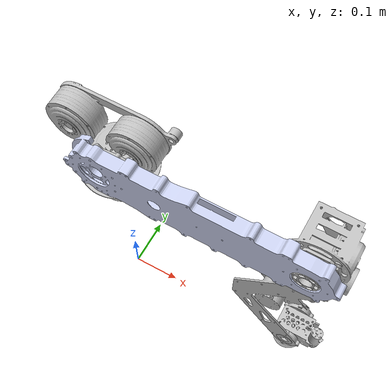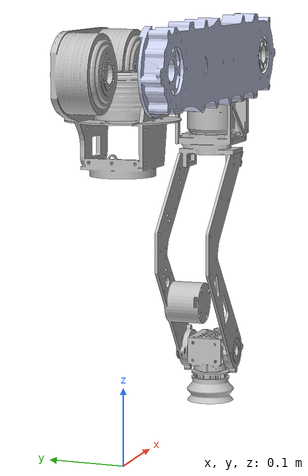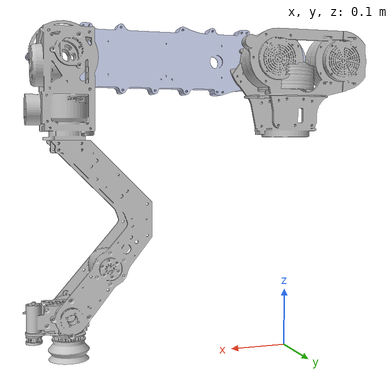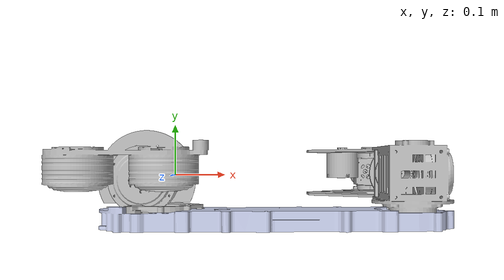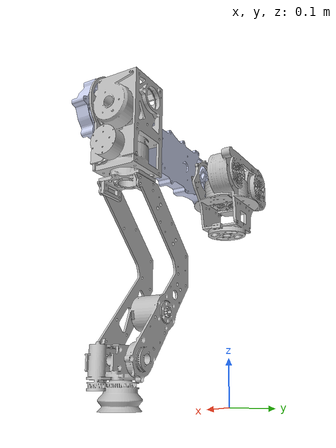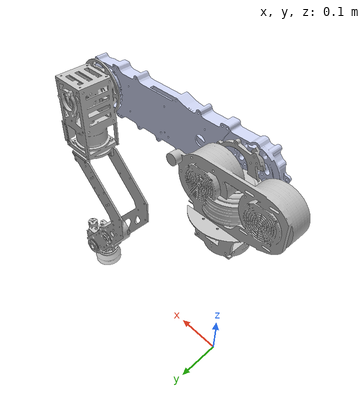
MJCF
<mujoco model="ARV_V1_MODEL">
  <compiler angle="radian" meshdir="/home/wuhuan/ros2_ws/src/ARV_V1_MODEL/meshes/"/>

  <option timestep="0.005"/>

  <size njmax="0" nconmax="0"/>

  <asset>
    <mesh name="base_link" content_type="model/stl" file="base_link.STL"/>
    <mesh name="link1_double8009" content_type="model/stl" file="link1_double8009.STL"/>
    <mesh name="link2_arm1" content_type="model/stl" file="link2_arm1.STL"/>
    <mesh name="link3_sight" content_type="model/stl" file="link3_sight.STL"/>
    <mesh name="link4_arm2" content_type="model/stl" file="link4_arm2.STL"/>
    <mesh name="link5_4310pitch" content_type="model/stl" file="link5_4310pitch.STL"/>
    <mesh name="link6_2006roll" content_type="model/stl" file="link6_2006roll.STL"/>
  </asset>

  <worldbody>
    <geom pos="0 0 0.5" quat="1 0 0 0" type="mesh" rgba="0.752941 0.752941 0.752941 1" mesh="base_link" contype="0" conaffinity="0"/>
    <body name="link1_double8009" pos="0 0 0.5">
      <inertial pos="-0.0155 0.0079001 -0.0262" quat="0.533551 0.464269 0.463309 0.533968" mass="1.22526" diaginertia="0.00217005 0.00132596 0.0012599"/>
      <joint name="joint_1" pos="0 0 0" axis="0 0 1" range="-3.2 3.2" actuatorfrcrange="-20 20" damping="0.1" frictionloss="0.1"/>
      <geom pos="0.03215 0 0" quat="0.707105 0.707108 0 0" type="mesh" rgba="0.752941 0.752941 0.752941 1" mesh="link1_double8009" contype="0" conaffinity="0"/>
      <body name="link2_arm1" quat="0.707105 0.707108 0 0">
        <inertial pos="-0.207835 -0.000992871 0.0570377" quat="-0.00195939 0.706956 -0.000894632 0.707254" mass="1.13036" diaginertia="0.0175304 0.016188 0.00142583"/>
        <joint name="joint_2" pos="0 0 0" axis="0 0 1" range="-3.2 3.2" actuatorfrcrange="-20 20" damping="0.1" frictionloss="0.1"/>
        <geom pos="0.381 0 0" quat="1 0 0 0" type="mesh" rgba="0.792157 0.819608 0.933333 1" mesh="link2_arm1" contype="0" conaffinity="0"/>
        <body name="link3_sight" pos="0.382 0 -0.0072">
          <inertial pos="0.010608 -0.0536252 0.0110705" quat="0.525051 0.488136 -0.470632 0.514345" mass="1.25599" diaginertia="0.00111928 0.00105266 0.000829075"/>
          <joint name="joint_3" pos="0 0 0" axis="0 0 -1" range="-3.2 3.2" actuatorfrcrange="-20 20" damping="0.1" frictionloss="0.1"/>
          <geom type="mesh" rgba="0.752941 0.752941 0.752941 1" mesh="link3_sight" contype="0" conaffinity="0"/>
          <body name="link4_arm2" pos="0 -0.418 0">
            <inertial pos="-0.0471748 0.116148 -0.00314899" quat="0.485468 0.514082 -0.485474 0.514155" mass="0.40616" diaginertia="0.00292372 0.00242026 0.000505354"/>
            <joint name="joint_4" pos="0 0 0" axis="0 -1 0" range="-3.2 3.2" actuatorfrcrange="-1.2 1.2" damping="0.1" frictionloss="0.1"/>
            <geom type="mesh" rgba="0.752941 0.752941 0.752941 1" mesh="link4_arm2" contype="0" conaffinity="0"/>
            <body name="link5_4310pitch" quat="0.707107 0.707107 0 0">
              <inertial pos="0.0149376 0.0044388 0.00729204" quat="-0.00108084 0.700731 0.00123916 0.713424" mass="0.145782" diaginertia="5.55925e-05 4.96765e-05 2.16144e-05"/>
              <joint name="joint_5" pos="0 0 0" axis="0 1 0" range="-3.2 3.2" actuatorfrcrange="-7 7" damping="0.1" frictionloss="0.1"/>
              <geom type="mesh" rgba="0.752941 0.752941 0.752941 1" mesh="link5_4310pitch" contype="0" conaffinity="0"/>
              <body name="link6_2006roll" pos="0 0 0.0518" quat="0.707107 0 0 -0.707107">
                <inertial pos="0 0 -0.0119547" quat="0.5 0.5 -0.5 0.5" mass="0.114376" diaginertia="4.037e-05 2.33675e-05 2.33675e-05"/>
                <joint name="joint_6" pos="0 0 0" axis="0 0 -1" range="-3.2 3.2" actuatorfrcrange="-1 1" damping="0.1" frictionloss="0.1"/>
                <geom type="mesh" rgba="0.752941 0.752941 0.752941 1" mesh="link6_2006roll" contype="0" conaffinity="0"/>
              </body>
            </body>
          </body>
        </body>
      </body>
    </body>
  </worldbody>

  <actuator>
    <motor name="actuator_1" joint="joint_1" gear="1" ctrllimited="true" ctrlrange="-20 20"/>
    <motor name="actuator_2" joint="joint_2" gear="1" ctrllimited="true" ctrlrange="-20 20"/>
    <motor name="actuator_3" joint="joint_3" gear="1" ctrllimited="true" ctrlrange="-20 20"/>
    <motor name="actuator_4" joint="joint_4" gear="1" ctrllimited="true" ctrlrange="-20 20"/>
    <motor name="actuator_5" joint="joint_5" gear="1" ctrllimited="true" ctrlrange="-20 20"/>
    <motor name="actuator_6" joint="joint_6" gear="1" ctrllimited="true" ctrlrange="-20 20"/>
  </actuator>
</mujoco>
